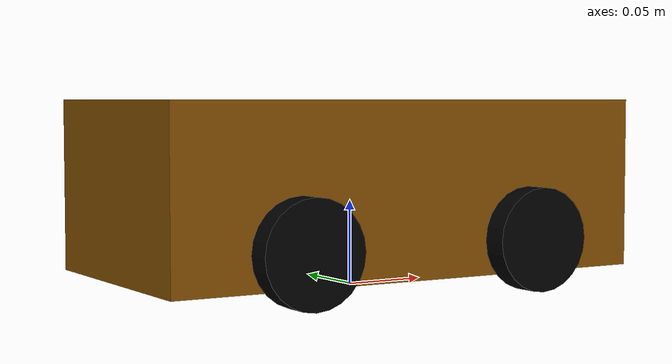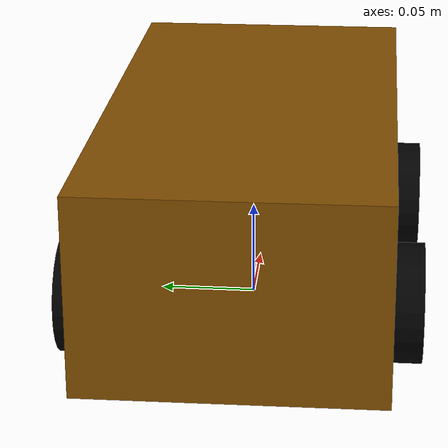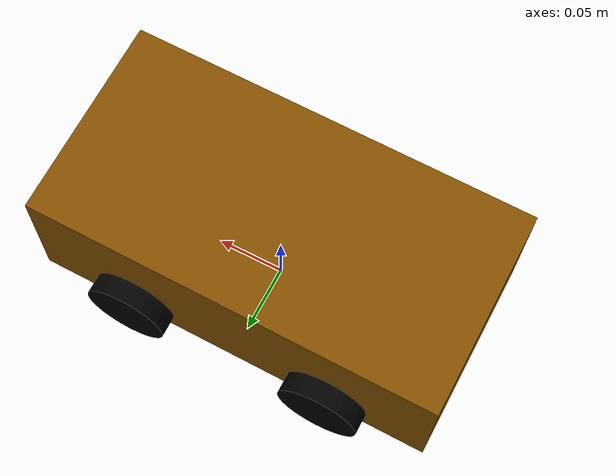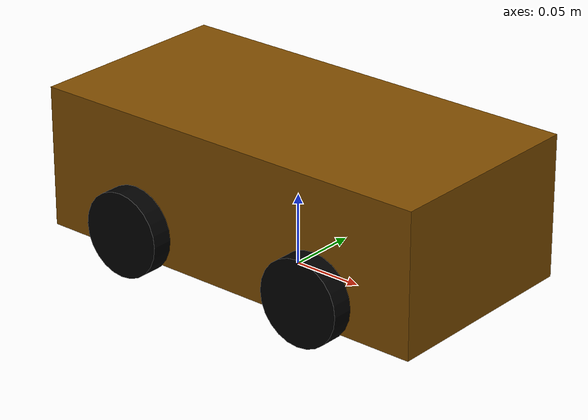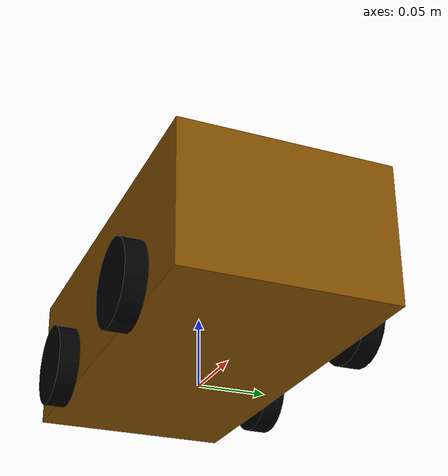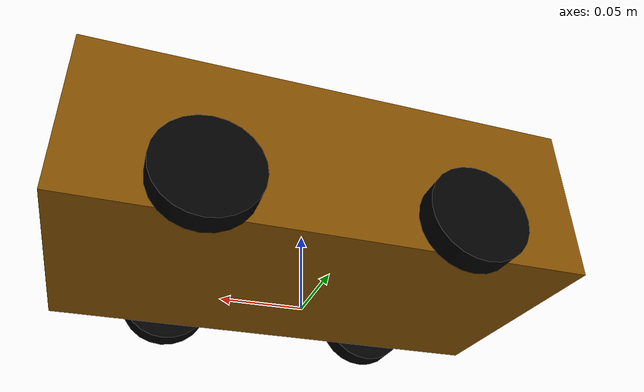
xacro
<robot name="car" xmlns:xacro="http://www.ros.org/wiki/xacro" >

    <xacro:macro name="sphere_inertial_matrix" params="m r">
        <inertial>
            <mass value="${m}" />
            <inertia ixx="${2*m*r*r/5}" ixy="0" ixz="0"
                iyy="${2*m*r*r/5}" iyz="0"
                izz="${2*m*r*r/5}" />
        </inertial>
    </xacro:macro>

    <xacro:macro name="cylinder_inertial_matrix" params="m r h">
        <inertial>
            <mass value="${m}" />
            <inertia ixx="${m*(3*r*r+h*h)/12}" ixy = "0" ixz = "0"
                iyy="${m*(3*r*r+h*h)/12}" iyz = "0"
                izz="${m*r*r/2}" />
        </inertial>
    </xacro:macro>

    <xacro:macro name="Box_inertial_matrix" params="m l w h">
       <inertial>
               <mass value="${m}" />
               <inertia ixx="${m*(h*h + l*l)/12}" ixy = "0" ixz = "0"
                   iyy="${m*(w*w + l*l)/12}" iyz= "0"
                   izz="${m*(w*w + h*h)/12}" />
       </inertial>
   </xacro:macro>

    <xacro:property name="PI" value="3.1415927"/>
    <xacro:property name="base_footprint_radius" value="0.001" />
    <xacro:property name="basebox_length" value="0.3" />
    <xacro:property name="basebox_width" value="0.15" />
    <xacro:property name="basebox_height" value="0.1" />
    <xacro:property name="earth_space" value="0.01" />
    <xacro:property name="wheel_radius" value="0.03"/>
    <xacro:property name="wheel_length" value="0.015"/>
    <xacro:property name="basebox_m" value="1.0" />
    <xacro:property name="wheel_m" value="0.5" />

    <link name="base_footprint">
        <visual>
            <geometry>
                <sphere radius="${base_footprint_radius}" />
            </geometry>
        </visual>
    </link>

    <link name="base_link">
        <visual>
            <geometry>
                <box size="${basebox_length} ${basebox_width} ${basebox_height}"/>
            </geometry>
            <origin xyz="0 0 0" rpy="0 0 0"/>
            <material name="yellow">
                <color rgba="0.5 0.3 0.0 1.0"/>
            </material>
        </visual>
        <collision>
            <geometry>
                <box size="${basebox_length} ${basebox_width} ${basebox_height}"/>
            </geometry>
            <origin xyz="0 0 0" rpy="0 0 0" />
        </collision>
        <xacro:Box_inertial_matrix m="${basebox_m}" l="${basebox_length}" w="${basebox_width}" h="${basebox_height}" />
    </link>

    <joint name="baselink2base_footprint" type="fixed">
        <parent link="base_footprint"/>
        <child link="base_link"/>
        <origin xyz="0 0 ${earth_space+basebox_height/2}"/>
    </joint>

    <xacro:macro name="add_wheels" params="name flag1 flag2">
        <link name="${name}_wheel">
            <visual>
                <geometry>
                    <cylinder radius="${wheel_radius}" length="${wheel_length}"/>
                </geometry>
                <origin xyz="0 0 0" rpy="${PI/2} 0 0"/>
                <material name="black">
                    <color rgba="0 0 0 1.0"/>
                </material>
            </visual>
            <collision>
                <geometry>
                    <cylinder radius="${wheel_radius}" length="${wheel_length}"/>
                </geometry>
                <origin xyz="0 0 0" rpy="${PI/2} 0 0"/>
            </collision>
            <xacro:cylinder_inertial_matrix m="${wheel_m}" r="${wheel_radius}" h="${wheel_length}" />
        </link>
        <joint name="${name}_wheel2base_link" type="continuous">
            <parent link="base_link"/>
            <child link="${name}_wheel"/>
            <origin xyz="${flag2*basebox_length/4} ${flag1/2*(basebox_width+wheel_length)} ${wheel_radius-basebox_height/2-earth_space}"/>
            <axis xyz="0 1 0"/>
        </joint>
    </xacro:macro>
    <xacro:add_wheels name="left_front" flag1="1" flag2="1"/>
    <xacro:add_wheels name="right_front" flag1="-1" flag2="1"/>
    <xacro:add_wheels name="left_back" flag1="1" flag2="-1"/>
    <xacro:add_wheels name="right_back" flag1="-1" flag2="-1"/>

    <gazebo reference="base_link">
        <material>Gazebo/Orange</material>
    </gazebo>

    <xacro:macro name="set_gazebo_param1" params="link_name">
        <gazebo reference="${link_name}">
            <material>Gazebo/Turquoise</material>
            <mu1>0.1</mu1>
            <mu2>0.1</mu2>
            <kp>100000000</kp>
            <kd>10</kd>
        </gazebo>
    </xacro:macro>
    <xacro:set_gazebo_param1 link_name="left_front_wheel" />
    <xacro:set_gazebo_param1 link_name="right_front_wheel" />

    <xacro:macro name="set_gazebo_param2" params="link_name">
        <gazebo reference="${link_name}">
            <material>Gazebo/Turquoise</material>
            <mu1>0.5</mu1>
            <mu2>0.5</mu2>
            <kp>100000000</kp>
            <kd>10</kd>
        </gazebo>
    </xacro:macro>
    <xacro:set_gazebo_param2 link_name="left_back_wheel" />
    <xacro:set_gazebo_param2 link_name="right_back_wheel" />

    <xacro:macro name="joint_trans" params="joint_name">
        <!-- Transmission is important to link the joints and the controller -->
        <transmission name="${joint_name}_trans">
            <type>transmission_interface/SimpleTransmission</type>
            <joint name="${joint_name}">
                <hardwareInterface>hardware_interface/VelocityJointInterface</hardwareInterface>
            </joint>
            <actuator name="${joint_name}_motor">
                <hardwareInterface>hardware_interface/VelocityJointInterface</hardwareInterface>
                <mechanicalReduction>1</mechanicalReduction>
            </actuator>
        </transmission>
    </xacro:macro>
    <xacro:joint_trans joint_name="left_back_wheel2base_link" />
    <xacro:joint_trans joint_name="right_back_wheel2base_link" />

    <gazebo>
        <plugin name="skid_steer_drive_controller" filename="libgazebo_ros_skid_steer_drive.so">
            <rosDebugLevel>Debug</rosDebugLevel>
            <publishWheelTF>true</publishWheelTF>
            <robotNamespace>/laser_robot</robotNamespace>
            <publishTf>1</publishTf>
            <publishWheelJointState>true</publishWheelJointState>
            <updateRate>100.0</updateRate>
            <leftFrontJoint>left_front_wheel2base_link</leftFrontJoint>
            <leftRearJoint>left_back_wheel2base_link</leftRearJoint>
            <rightFrontJoint>right_front_wheel2base_link</rightFrontJoint>
            <rightRearJoint>right_back_wheel2base_link</rightRearJoint>
            <wheelSeparation>${basebox_width}+${wheel_length}</wheelSeparation> <!-- 车轮间距 -->
            <wheelDiameter>${wheel_radius*2}</wheelDiameter> <!-- 车轮直径 -->
            <broadcastTF>1</broadcastTF>
            <torque>100</torque>
            <commandTopic>cmd_vel</commandTopic>
            <odometryFrame>odom</odometryFrame>
            <odometryTopic>odom</odometryTopic>
            <robotBaseFrame>base_footprint</robotBaseFrame>
        </plugin>
    </gazebo>

</robot>
